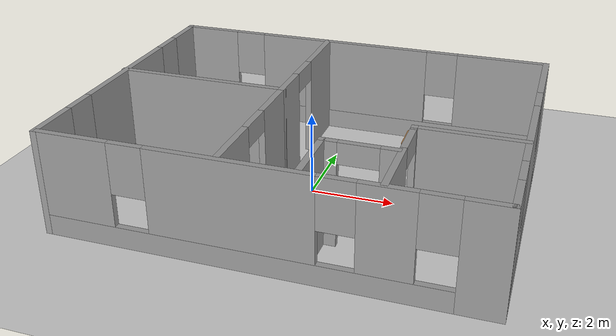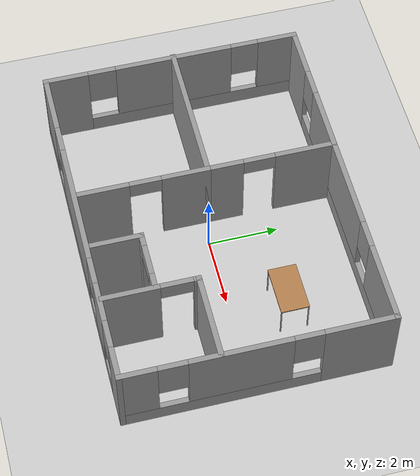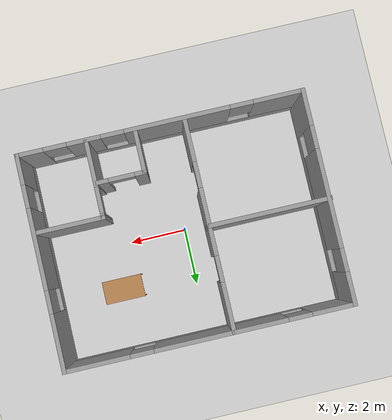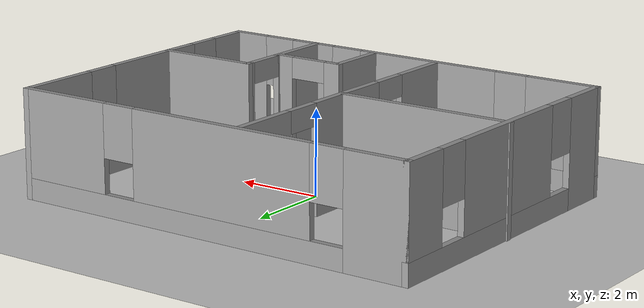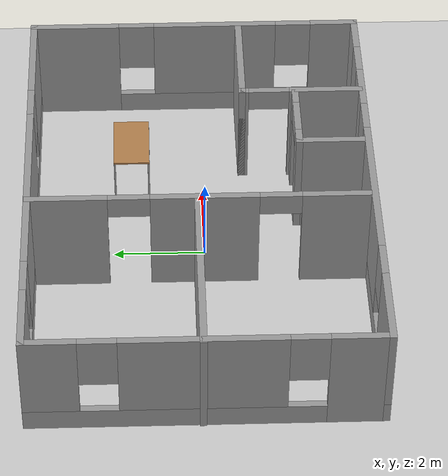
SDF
<sdf version="1.6">
 <world name="default">
  <light name="sun" type="directional">
   <pose>0 0 10 0 -0 0</pose>
   <diffuse>0.8 0.8 0.8 1</diffuse>
   <specular>0.1 0.1 0.1 1</specular>
   <attenuation>
    <range>1000</range>
    <constant>0.9</constant>
    <linear>0.01</linear>
    <quadratic>0.001</quadratic>
   </attenuation>
   <direction>-0.5 0.5 -1</direction>
  </light>
  <model name="ground_plane">
   <static>1</static>
   <link name="link">
    <collision name="collision">
     <geometry><plane><normal>0 0 1</normal><size>100 100</size></plane></geometry>
     <surface><friction><ode><mu>100</mu><mu2>50</mu2></ode></friction></surface>
    </collision>
    <visual name="visual">
     <cast_shadows>0</cast_shadows>
     <geometry><plane><normal>0 0 1</normal><size>100 100</size></plane></geometry>
     <material>
      <script><uri>file://media/materials/scripts/gazebo.material</uri><name>Gazebo/Grey</name></script>
     </material>
    </visual>
   </link>
  </model>
  <gravity>0 0 -9.8</gravity>
  <magnetic_field>6e-06 2.3e-05 -4.2e-05</magnetic_field>
  <atmosphere type="adiabatic"/>
  <physics name="default_physics" default="0" type="ode">
   <max_step_size>0.001</max_step_size>
   <real_time_factor>1</real_time_factor>
   <real_time_update_rate>1000</real_time_update_rate>
  </physics>
  <scene><ambient>0.4 0.4 0.4 1</ambient><background>0.7 0.7 0.7 1</background><shadows>1</shadows></scene>
  <spherical_coordinates>
   <surface_model>EARTH_WGS84</surface_model>
   <latitude_deg>0</latitude_deg>
   <longitude_deg>0</longitude_deg>
   <elevation>0</elevation>
   <heading_deg>0</heading_deg>
  </spherical_coordinates>
  <model name="Untitled">
   <pose>0.00511 0.106939 0 0 -0 0</pose>
   <link name="Wall_15">
    <pose>-4.90979 0 0 0 -0 1.5708</pose>
    <visual name="Wall_15_Visual_0">
     <pose>-3.10035 0 1.25 0 -0 0</pose>
     <geometry><box><size>1.29929 0.15 2.5</size></box></geometry>
     <material>
      <script><uri>file://media/materials/scripts/gazebo.material</uri><name>Gazebo/Grey</name></script>
      <ambient>1 1 1 1</ambient>
     </material>
    </visual>
    <collision name="Wall_15_Collision_0">
     <geometry><box><size>1.29929 0.15 2.5</size></box></geometry>
     <pose>-3.10035 0 1.25 0 -0 0</pose>
    </collision>
    <visual name="Wall_15_Visual_1">
     <pose>0.649647 0 0.25 0 -0 0</pose>
     <geometry><box><size>6.20071 0.15 0.5</size></box></geometry>
     <material>
      <script><uri>file://media/materials/scripts/gazebo.material</uri><name>Gazebo/Grey</name></script>
      <ambient>1 1 1 1</ambient>
     </material>
    </visual>
    <collision name="Wall_15_Collision_1">
     <geometry><box><size>6.20071 0.15 0.5</size></box></geometry>
     <pose>0.649647 0 0.25 0 -0 0</pose>
    </collision>
    <visual name="Wall_15_Visual_2">
     <pose>0.061218 0 1.5 0 -0 0</pose>
     <geometry><box><size>3.42385 0.15 2</size></box></geometry>
     <material>
      <script><uri>file://media/materials/scripts/gazebo.material</uri><name>Gazebo/Grey</name></script>
      <ambient>1 1 1 1</ambient>
     </material>
    </visual>
    <collision name="Wall_15_Collision_2">
     <geometry><box><size>3.42385 0.15 2</size></box></geometry>
     <pose>0.061218 0 1.5 0 -0 0</pose>
    </collision>
    <visual name="Wall_15_Visual_3">
     <pose>3.16157 0 1.5 0 -0 0</pose>
     <geometry><box><size>1.17686 0.15 2</size></box></geometry>
     <material>
      <script><uri>file://media/materials/scripts/gazebo.material</uri><name>Gazebo/Grey</name></script>
      <ambient>1 1 1 1</ambient>
     </material>
    </visual>
    <collision name="Wall_15_Collision_3">
     <geometry><box><size>1.17686 0.15 2</size></box></geometry>
     <pose>3.16157 0 1.5 0 -0 0</pose>
    </collision>
    <visual name="Wall_15_Visual_4">
     <pose>-2.05071 0 1.9 0 -0 0</pose>
     <geometry><box><size>0.8 0.15 1.2</size></box></geometry>
     <material>
      <script><uri>file://media/materials/scripts/gazebo.material</uri><name>Gazebo/Grey</name></script>
      <ambient>1 1 1 1</ambient>
     </material>
    </visual>
    <collision name="Wall_15_Collision_4">
     <geometry><box><size>0.8 0.15 1.2</size></box></geometry>
     <pose>-2.05071 0 1.9 0 -0 0</pose>
    </collision>
    <visual name="Wall_15_Visual_5">
     <pose>2.17314 0 1.9 0 -0 0</pose>
     <geometry><box><size>0.8 0.15 1.2</size></box></geometry>
     <material>
      <script><uri>file://media/materials/scripts/gazebo.material</uri><name>Gazebo/Grey</name></script>
      <ambient>1 1 1 1</ambient>
     </material>
    </visual>
    <collision name="Wall_15_Collision_5">
     <geometry><box><size>0.8 0.15 1.2</size></box></geometry>
     <pose>2.17314 0 1.9 0 -0 0</pose>
    </collision>
   </link>
   <link name="Wall_16">
    <pose>0.015209 3.675 0 0 -0 0</pose>
    <visual name="Wall_16_Visual_0">
     <pose>-4.23634 0 1.25 0 -0 0</pose>
     <geometry><box><size>1.52733 0.15 2.5</size></box></geometry>
     <material>
      <script><uri>file://media/materials/scripts/gazebo.material</uri><name>Gazebo/Grey</name></script>
      <ambient>1 1 1 1</ambient>
     </material>
    </visual>
    <collision name="Wall_16_Collision_0">
     <geometry><box><size>1.52733 0.15 2.5</size></box></geometry>
     <pose>-4.23634 0 1.25 0 -0 0</pose>
    </collision>
    <visual name="Wall_16_Visual_1">
     <pose>0.763663 0 0.25 0 -0 0</pose>
     <geometry><box><size>8.47267 0.15 0.5</size></box></geometry>
     <material>
      <script><uri>file://media/materials/scripts/gazebo.material</uri><name>Gazebo/Grey</name></script>
      <ambient>1 1 1 1</ambient>
     </material>
    </visual>
    <collision name="Wall_16_Collision_1">
     <geometry><box><size>8.47267 0.15 0.5</size></box></geometry>
     <pose>0.763663 0 0.25 0 -0 0</pose>
    </collision>
    <visual name="Wall_16_Visual_2">
     <pose>-0.387512 0 1.5 0 -0 0</pose>
     <geometry><box><size>4.57032 0.15 2</size></box></geometry>
     <material>
      <script><uri>file://media/materials/scripts/gazebo.material</uri><name>Gazebo/Grey</name></script>
      <ambient>1 1 1 1</ambient>
     </material>
    </visual>
    <collision name="Wall_16_Collision_2">
     <geometry><box><size>4.57032 0.15 2</size></box></geometry>
     <pose>-0.387512 0 1.5 0 -0 0</pose>
    </collision>
    <visual name="Wall_16_Visual_3">
     <pose>3.84883 0 1.5 0 -0 0</pose>
     <geometry><box><size>2.30235 0.15 2</size></box></geometry>
     <material>
      <script><uri>file://media/materials/scripts/gazebo.material</uri><name>Gazebo/Grey</name></script>
      <ambient>1 1 1 1</ambient>
     </material>
    </visual>
    <collision name="Wall_16_Collision_3">
     <geometry><box><size>2.30235 0.15 2</size></box></geometry>
     <pose>3.84883 0 1.5 0 -0 0</pose>
    </collision>
    <visual name="Wall_16_Visual_4">
     <pose>-3.07267 0 1.9 0 -0 0</pose>
     <geometry><box><size>0.8 0.15 1.2</size></box></geometry>
     <material>
      <script><uri>file://media/materials/scripts/gazebo.material</uri><name>Gazebo/Grey</name></script>
      <ambient>1 1 1 1</ambient>
     </material>
    </visual>
    <collision name="Wall_16_Collision_4">
     <geometry><box><size>0.8 0.15 1.2</size></box></geometry>
     <pose>-3.07267 0 1.9 0 -0 0</pose>
    </collision>
    <visual name="Wall_16_Visual_5">
     <pose>2.29765 0 1.9 0 -0 0</pose>
     <geometry><box><size>0.8 0.15 1.2</size></box></geometry>
     <material>
      <script><uri>file://media/materials/scripts/gazebo.material</uri><name>Gazebo/Grey</name></script>
      <ambient>1 1 1 1</ambient>
     </material>
    </visual>
    <collision name="Wall_16_Collision_5">
     <geometry><box><size>0.8 0.15 1.2</size></box></geometry>
     <pose>2.29765 0 1.9 0 -0 0</pose>
    </collision>
   </link>
   <link name="Wall_17">
    <pose>4.94021 0 0 0 0 -1.5708</pose>
    <visual name="Wall_17_Visual_0">
     <pose>-2.73919 0 1.25 0 -0 0</pose>
     <geometry><box><size>2.02163 0.15 2.5</size></box></geometry>
     <material>
      <script><uri>file://media/materials/scripts/gazebo.material</uri><name>Gazebo/Grey</name></script>
      <ambient>1 1 1 1</ambient>
     </material>
    </visual>
    <collision name="Wall_17_Collision_0">
     <geometry><box><size>2.02163 0.15 2.5</size></box></geometry>
     <pose>-2.73919 0 1.25 0 -0 0</pose>
    </collision>
    <visual name="Wall_17_Visual_1">
     <pose>1.01081 0 0.25 0 -0 0</pose>
     <geometry><box><size>5.47837 0.15 0.5</size></box></geometry>
     <material>
      <script><uri>file://media/materials/scripts/gazebo.material</uri><name>Gazebo/Grey</name></script>
      <ambient>1 1 1 1</ambient>
     </material>
    </visual>
    <collision name="Wall_17_Collision_1">
     <geometry><box><size>5.47837 0.15 0.5</size></box></geometry>
     <pose>1.01081 0 0.25 0 -0 0</pose>
    </collision>
    <visual name="Wall_17_Visual_2">
     <pose>0.471791 0 1.5 0 -0 0</pose>
     <geometry><box><size>2.80033 0.15 2</size></box></geometry>
     <material>
      <script><uri>file://media/materials/scripts/gazebo.material</uri><name>Gazebo/Grey</name></script>
      <ambient>1 1 1 1</ambient>
     </material>
    </visual>
    <collision name="Wall_17_Collision_2">
     <geometry><box><size>2.80033 0.15 2</size></box></geometry>
     <pose>0.471791 0 1.5 0 -0 0</pose>
    </collision>
    <visual name="Wall_17_Visual_3">
     <pose>3.21098 0 1.5 0 -0 0</pose>
     <geometry><box><size>1.07804 0.15 2</size></box></geometry>
     <material>
      <script><uri>file://media/materials/scripts/gazebo.material</uri><name>Gazebo/Grey</name></script>
      <ambient>1 1 1 1</ambient>
     </material>
    </visual>
    <collision name="Wall_17_Collision_3">
     <geometry><box><size>1.07804 0.15 2</size></box></geometry>
     <pose>3.21098 0 1.5 0 -0 0</pose>
    </collision>
    <visual name="Wall_17_Visual_4">
     <pose>-1.32837 0 1.9 0 -0 0</pose>
     <geometry><box><size>0.8 0.15 1.2</size></box></geometry>
     <material>
      <script><uri>file://media/materials/scripts/gazebo.material</uri><name>Gazebo/Grey</name></script>
      <ambient>1 1 1 1</ambient>
     </material>
    </visual>
    <collision name="Wall_17_Collision_4">
     <geometry><box><size>0.8 0.15 1.2</size></box></geometry>
     <pose>-1.32837 0 1.9 0 -0 0</pose>
    </collision>
    <visual name="Wall_17_Visual_5">
     <pose>2.27196 0 1.9 0 -0 0</pose>
     <geometry><box><size>0.8 0.15 1.2</size></box></geometry>
     <material>
      <script><uri>file://media/materials/scripts/gazebo.material</uri><name>Gazebo/Grey</name></script>
      <ambient>1 1 1 1</ambient>
     </material>
    </visual>
    <collision name="Wall_17_Collision_5">
     <geometry><box><size>0.8 0.15 1.2</size></box></geometry>
     <pose>2.27196 0 1.9 0 -0 0</pose>
    </collision>
   </link>
   <link name="Wall_18">
    <pose>0.015209 -3.675 0 0 -0 3.14159</pose>
    <visual name="Wall_18_Visual_0">
     <pose>-4.51257 0 1.25 0 -0 0</pose>
     <geometry><box><size>0.974855 0.15 2.5</size></box></geometry>
     <material>
      <script><uri>file://media/materials/scripts/gazebo.material</uri><name>Gazebo/Grey</name></script>
      <ambient>1 1 1 1</ambient>
     </material>
    </visual>
    <collision name="Wall_18_Collision_0">
     <geometry><box><size>0.974855 0.15 2.5</size></box></geometry>
     <pose>-4.51257 0 1.25 0 -0 0</pose>
    </collision>
    <visual name="Wall_18_Visual_1">
     <pose>0.487428 0 0.25 0 -0 0</pose>
     <geometry><box><size>9.02515 0.15 0.5</size></box></geometry>
     <material>
      <script><uri>file://media/materials/scripts/gazebo.material</uri><name>Gazebo/Grey</name></script>
      <ambient>1 1 1 1</ambient>
     </material>
    </visual>
    <collision name="Wall_18_Collision_1">
     <geometry><box><size>9.02515 0.15 0.5</size></box></geometry>
     <pose>0.487428 0 0.25 0 -0 0</pose>
    </collision>
    <visual name="Wall_18_Visual_2">
     <pose>-2.63958 0 1.5 0 -0 0</pose>
     <geometry><box><size>1.17113 0.15 2</size></box></geometry>
     <material>
      <script><uri>file://media/materials/scripts/gazebo.material</uri><name>Gazebo/Grey</name></script>
      <ambient>1 1 1 1</ambient>
     </material>
    </visual>
    <collision name="Wall_18_Collision_2">
     <geometry><box><size>1.17113 0.15 2</size></box></geometry>
     <pose>-2.63958 0 1.5 0 -0 0</pose>
    </collision>
    <visual name="Wall_18_Visual_3">
     <pose>0.578591 0 1.5 0 -0 0</pose>
     <geometry><box><size>3.66521 0.15 2</size></box></geometry>
     <material>
      <script><uri>file://media/materials/scripts/gazebo.material</uri><name>Gazebo/Grey</name></script>
      <ambient>1 1 1 1</ambient>
     </material>
    </visual>
    <collision name="Wall_18_Collision_3">
     <geometry><box><size>3.66521 0.15 2</size></box></geometry>
     <pose>0.578591 0 1.5 0 -0 0</pose>
    </collision>
    <visual name="Wall_18_Visual_4">
     <pose>4.1056 0 1.5 0 -0 0</pose>
     <geometry><box><size>1.7888 0.15 2</size></box></geometry>
     <material>
      <script><uri>file://media/materials/scripts/gazebo.material</uri><name>Gazebo/Grey</name></script>
      <ambient>1 1 1 1</ambient>
     </material>
    </visual>
    <collision name="Wall_18_Collision_4">
     <geometry><box><size>1.7888 0.15 2</size></box></geometry>
     <pose>4.1056 0 1.5 0 -0 0</pose>
    </collision>
    <visual name="Wall_18_Visual_5">
     <pose>-3.62514 0 1.9 0 -0 0</pose>
     <geometry><box><size>0.8 0.15 1.2</size></box></geometry>
     <material>
      <script><uri>file://media/materials/scripts/gazebo.material</uri><name>Gazebo/Grey</name></script>
      <ambient>1 1 1 1</ambient>
     </material>
    </visual>
    <collision name="Wall_18_Collision_5">
     <geometry><box><size>0.8 0.15 1.2</size></box></geometry>
     <pose>-3.62514 0 1.9 0 -0 0</pose>
    </collision>
    <visual name="Wall_18_Visual_6">
     <pose>-1.65402 0 1.9 0 -0 0</pose>
     <geometry><box><size>0.8 0.15 1.2</size></box></geometry>
     <material>
      <script><uri>file://media/materials/scripts/gazebo.material</uri><name>Gazebo/Grey</name></script>
      <ambient>1 1 1 1</ambient>
     </material>
    </visual>
    <collision name="Wall_18_Collision_6">
     <geometry><box><size>0.8 0.15 1.2</size></box></geometry>
     <pose>-1.65402 0 1.9 0 -0 0</pose>
    </collision>
    <visual name="Wall_18_Visual_7">
     <pose>2.8112 0 1.9 0 -0 0</pose>
     <geometry><box><size>0.8 0.15 1.2</size></box></geometry>
     <material>
      <script><uri>file://media/materials/scripts/gazebo.material</uri><name>Gazebo/Grey</name></script>
      <ambient>1 1 1 1</ambient>
     </material>
    </visual>
    <collision name="Wall_18_Collision_7">
     <geometry><box><size>0.8 0.15 1.2</size></box></geometry>
     <pose>2.8112 0 1.9 0 -0 0</pose>
    </collision>
   </link>
   <link name="Wall_20">
    <collision name="Wall_20_Collision">
     <geometry><box><size>4.28042 0.15 2.5</size></box></geometry>
     <pose>0 0 1.25 0 -0 0</pose>
    </collision>
    <visual name="Wall_20_Visual">
     <pose>0 0 1.25 0 -0 0</pose>
     <geometry><box><size>4.28042 0.15 2.5</size></box></geometry>
     <material>
      <script><uri>file://media/materials/scripts/gazebo.material</uri><name>Gazebo/Grey</name></script>
      <ambient>1 1 1 1</ambient>
     </material>
    </visual>
    <pose>-2.875 0.066353 0 0 -0 0</pose>
   </link>
   <link name="Wall_23">
    <pose>-0.809791 1.86635 0 0 -0 1.5708</pose>
    <visual name="Wall_23_Visual_0">
     <pose>-1.33092 0 1.25 0 -0 0</pose>
     <geometry><box><size>1.08816 0.15 2.5</size></box></geometry>
     <material>
      <script><uri>file://media/materials/scripts/gazebo.material</uri><name>Gazebo/Grey</name></script>
      <ambient>1 1 1 1</ambient>
     </material>
    </visual>
    <collision name="Wall_23_Collision_0">
     <geometry><box><size>1.08816 0.15 2.5</size></box></geometry>
     <pose>-1.33092 0 1.25 0 -0 0</pose>
    </collision>
    <visual name="Wall_23_Visual_1">
     <pose>0.994078 0 1.25 0 -0 0</pose>
     <geometry><box><size>1.76184 0.15 2.5</size></box></geometry>
     <material>
      <script><uri>file://media/materials/scripts/gazebo.material</uri><name>Gazebo/Grey</name></script>
      <ambient>1 1 1 1</ambient>
     </material>
    </visual>
    <collision name="Wall_23_Collision_1">
     <geometry><box><size>1.76184 0.15 2.5</size></box></geometry>
     <pose>0.994078 0 1.25 0 -0 0</pose>
    </collision>
    <visual name="Wall_23_Visual_2">
     <pose>-0.336844 0 2.25 0 -0 0</pose>
     <geometry><box><size>0.9 0.15 0.5</size></box></geometry>
     <material>
      <script><uri>file://media/materials/scripts/gazebo.material</uri><name>Gazebo/Grey</name></script>
      <ambient>1 1 1 1</ambient>
     </material>
    </visual>
    <collision name="Wall_23_Collision_2">
     <geometry><box><size>0.9 0.15 0.5</size></box></geometry>
     <pose>-0.336844 0 2.25 0 -0 0</pose>
    </collision>
   </link>
   <link name="Wall_25">
    <pose>-0.809791 -1.73365 0 0 0 -1.5708</pose>
    <visual name="Wall_25_Visual_0">
     <pose>-1.18391 0 1.25 0 -0 0</pose>
     <geometry><box><size>1.38218 0.15 2.5</size></box></geometry>
     <material>
      <script><uri>file://media/materials/scripts/gazebo.material</uri><name>Gazebo/Grey</name></script>
      <ambient>1 1 1 1</ambient>
     </material>
    </visual>
    <collision name="Wall_25_Collision_0">
     <geometry><box><size>1.38218 0.15 2.5</size></box></geometry>
     <pose>-1.18391 0 1.25 0 -0 0</pose>
    </collision>
    <visual name="Wall_25_Visual_1">
     <pose>1.14109 0 1.25 0 -0 0</pose>
     <geometry><box><size>1.46782 0.15 2.5</size></box></geometry>
     <material>
      <script><uri>file://media/materials/scripts/gazebo.material</uri><name>Gazebo/Grey</name></script>
      <ambient>1 1 1 1</ambient>
     </material>
    </visual>
    <collision name="Wall_25_Collision_1">
     <geometry><box><size>1.46782 0.15 2.5</size></box></geometry>
     <pose>1.14109 0 1.25 0 -0 0</pose>
    </collision>
    <visual name="Wall_25_Visual_2">
     <pose>-0.042822 0 2.25 0 -0 0</pose>
     <geometry><box><size>0.9 0.15 0.5</size></box></geometry>
     <material>
      <script><uri>file://media/materials/scripts/gazebo.material</uri><name>Gazebo/Grey</name></script>
      <ambient>1 1 1 1</ambient>
     </material>
    </visual>
    <collision name="Wall_25_Collision_2">
     <geometry><box><size>0.9 0.15 0.5</size></box></geometry>
     <pose>-0.042822 0 2.25 0 -0 0</pose>
    </collision>
   </link>
   <link name="Wall_33">
    <collision name="Wall_33_Collision">
     <geometry><box><size>2.5 0.15 2.5</size></box></geometry>
     <pose>0 0 1.25 0 -0 0</pose>
    </collision>
    <visual name="Wall_33_Visual">
     <pose>0 0 1.25 0 -0 0</pose>
     <geometry><box><size>2.5 0.15 2.5</size></box></geometry>
     <material>
      <script><uri>file://media/materials/scripts/gazebo.material</uri><name>Gazebo/Grey</name></script>
      <ambient>1 1 1 1</ambient>
     </material>
    </visual>
    <pose>3.7508 -1.00871 0 0 -0 3.14159</pose>
   </link>
   <link name="Wall_34">
    <collision name="Wall_34_Collision">
     <geometry><box><size>0.15 0.15 2.5</size></box></geometry>
     <pose>0 0 1.25 0 -0 0</pose>
    </collision>
    <visual name="Wall_34_Visual">
     <pose>0 0 1.25 0 -0 0</pose>
     <geometry><box><size>0.15 0.15 2.5</size></box></geometry>
     <material>
      <script><uri>file://media/materials/scripts/gazebo.material</uri><name>Gazebo/Grey</name></script>
      <ambient>1 1 1 1</ambient>
     </material>
    </visual>
    <pose>2.5758 -1.00871 0 0 -0 0</pose>
   </link>
   <link name="Wall_35">
    <pose>2.5758 -2.30871 0 0 0 -1.5708</pose>
    <visual name="Wall_35_Visual_0">
     <pose>-1.26517 0 1.25 0 -0 0</pose>
     <geometry><box><size>0.219662 0.15 2.5</size></box></geometry>
     <material>
      <script><uri>file://media/materials/scripts/gazebo.material</uri><name>Gazebo/Grey</name></script>
      <ambient>1 1 1 1</ambient>
     </material>
    </visual>
    <collision name="Wall_35_Collision_0">
     <geometry><box><size>0.219662 0.15 2.5</size></box></geometry>
     <pose>-1.26517 0 1.25 0 -0 0</pose>
    </collision>
    <visual name="Wall_35_Visual_1">
     <pose>0.559831 0 1.25 0 -0 0</pose>
     <geometry><box><size>1.63034 0.15 2.5</size></box></geometry>
     <material>
      <script><uri>file://media/materials/scripts/gazebo.material</uri><name>Gazebo/Grey</name></script>
      <ambient>1 1 1 1</ambient>
     </material>
    </visual>
    <collision name="Wall_35_Collision_1">
     <geometry><box><size>1.63034 0.15 2.5</size></box></geometry>
     <pose>0.559831 0 1.25 0 -0 0</pose>
    </collision>
    <visual name="Wall_35_Visual_2">
     <pose>-0.705338 0 2.25 0 -0 0</pose>
     <geometry><box><size>0.9 0.15 0.5</size></box></geometry>
     <material>
      <script><uri>file://media/materials/scripts/gazebo.material</uri><name>Gazebo/Grey</name></script>
      <ambient>1 1 1 1</ambient>
     </material>
    </visual>
    <collision name="Wall_35_Collision_2">
     <geometry><box><size>0.9 0.15 0.5</size></box></geometry>
     <pose>-0.705338 0 2.25 0 -0 0</pose>
    </collision>
   </link>
   <link name="Wall_37">
    <pose>1.69468 -2.18055 0 0 -0 3.14159</pose>
    <visual name="Wall_37_Visual_0">
     <pose>-0.660229 0 1.25 0 -0 0</pose>
     <geometry><box><size>0.429543 0.15 2.5</size></box></geometry>
     <material>
      <script><uri>file://media/materials/scripts/gazebo.material</uri><name>Gazebo/Grey</name></script>
      <ambient>1 1 1 1</ambient>
     </material>
    </visual>
    <collision name="Wall_37_Collision_0">
     <geometry><box><size>0.429543 0.15 2.5</size></box></geometry>
     <pose>-0.660229 0 1.25 0 -0 0</pose>
    </collision>
    <visual name="Wall_37_Visual_1">
     <pose>0.664771 0 1.25 0 -0 0</pose>
     <geometry><box><size>0.420457 0.15 2.5</size></box></geometry>
     <material>
      <script><uri>file://media/materials/scripts/gazebo.material</uri><name>Gazebo/Grey</name></script>
      <ambient>1 1 1 1</ambient>
     </material>
    </visual>
    <collision name="Wall_37_Collision_1">
     <geometry><box><size>0.420457 0.15 2.5</size></box></geometry>
     <pose>0.664771 0 1.25 0 -0 0</pose>
    </collision>
    <visual name="Wall_37_Visual_2">
     <pose>0.004543 0 2.25 0 -0 0</pose>
     <geometry><box><size>0.9 0.15 0.5</size></box></geometry>
     <material>
      <script><uri>file://media/materials/scripts/gazebo.material</uri><name>Gazebo/Grey</name></script>
      <ambient>1 1 1 1</ambient>
     </material>
    </visual>
    <collision name="Wall_37_Collision_2">
     <geometry><box><size>0.9 0.15 0.5</size></box></geometry>
     <pose>0.004543 0 2.25 0 -0 0</pose>
    </collision>
   </link>
   <link name="Wall_38">
    <collision name="Wall_38_Collision">
     <geometry><box><size>1.5 0.15 2.5</size></box></geometry>
     <pose>0 0 1.25 0 -0 0</pose>
    </collision>
    <visual name="Wall_38_Visual">
     <pose>0 0 1.25 0 -0 0</pose>
     <geometry><box><size>1.5 0.15 2.5</size></box></geometry>
     <material>
      <script><uri>file://media/materials/scripts/gazebo.material</uri><name>Gazebo/Grey</name></script>
      <ambient>1 1 1 1</ambient>
     </material>
    </visual>
    <pose>0.894682 -2.85555 0 0 0 -1.5708</pose>
   </link>
   <static>1</static>
  </model>
  <model name="table">
   <static>0</static>
   <link name="link">
    <collision name="surface">
     <pose>0 0 1 0 -0 0</pose>
     <geometry><box><size>1.5 0.8 0.03</size></box></geometry>
     <surface><friction><ode><mu>0.6</mu><mu2>0.6</mu2></ode></friction></surface>
    </collision>
    <visual name="visual1">
     <pose>0 0 1 0 -0 0</pose>
     <geometry><box><size>1.4 0.8 0.04</size></box></geometry>
     <material>
      <script><uri>file://media/materials/scripts/gazebo.material</uri><name>Gazebo/Wood</name></script>
     </material>
    </visual>
    <collision name="front_left_leg">
     <pose>0.68 0.38 0.5 0 -0 0</pose>
     <geometry><cylinder><radius>0.02</radius><length>1</length></cylinder></geometry>
    </collision>
    <visual name="front_left_leg">
     <pose>0.68 0.38 0.5 0 -0 0</pose>
     <geometry><cylinder><radius>0.02</radius><length>1</length></cylinder></geometry>
     <material>
      <script><uri>file://media/materials/scripts/gazebo.material</uri><name>Gazebo/Grey</name></script>
     </material>
    </visual>
    <collision name="front_right_leg">
     <pose>0.68 -0.38 0.5 0 -0 0</pose>
     <geometry><cylinder><radius>0.02</radius><length>1</length></cylinder></geometry>
    </collision>
    <visual name="front_right_leg">
     <pose>0.68 -0.38 0.5 0 -0 0</pose>
     <geometry><cylinder><radius>0.02</radius><length>1</length></cylinder></geometry>
     <material>
      <script><uri>file://media/materials/scripts/gazebo.material</uri><name>Gazebo/Grey</name></script>
     </material>
    </visual>
    <collision name="back_right_leg">
     <pose>-0.68 -0.38 0.5 0 -0 0</pose>
     <geometry><cylinder><radius>0.02</radius><length>1</length></cylinder></geometry>
    </collision>
    <visual name="back_right_leg">
     <pose>-0.68 -0.38 0.5 0 -0 0</pose>
     <geometry><cylinder><radius>0.02</radius><length>1</length></cylinder></geometry>
     <material>
      <script><uri>file://media/materials/scripts/gazebo.material</uri><name>Gazebo/Grey</name></script>
     </material>
    </visual>
    <collision name="back_left_leg">
     <pose>-0.68 0.38 0.5 0 -0 0</pose>
     <geometry><cylinder><radius>0.02</radius><length>1</length></cylinder></geometry>
    </collision>
    <visual name="back_left_leg">
     <pose>-0.68 0.38 0.5 0 -0 0</pose>
     <geometry><cylinder><radius>0.02</radius><length>1</length></cylinder></geometry>
     <material>
      <script><uri>file://media/materials/scripts/gazebo.material</uri><name>Gazebo/Grey</name></script>
     </material>
    </visual>
    <inertial>
     <inertia><ixx>1</ixx><ixy>0</ixy><ixz>0</ixz><iyy>1</iyy><iyz>0</iyz><izz>1</izz></inertia>
     <mass>1</mass>
    </inertial>
   </link>
   <pose>2.5797 1.58997 -8e-06 0 -0 0</pose>
  </model>
 </world>
</sdf>
